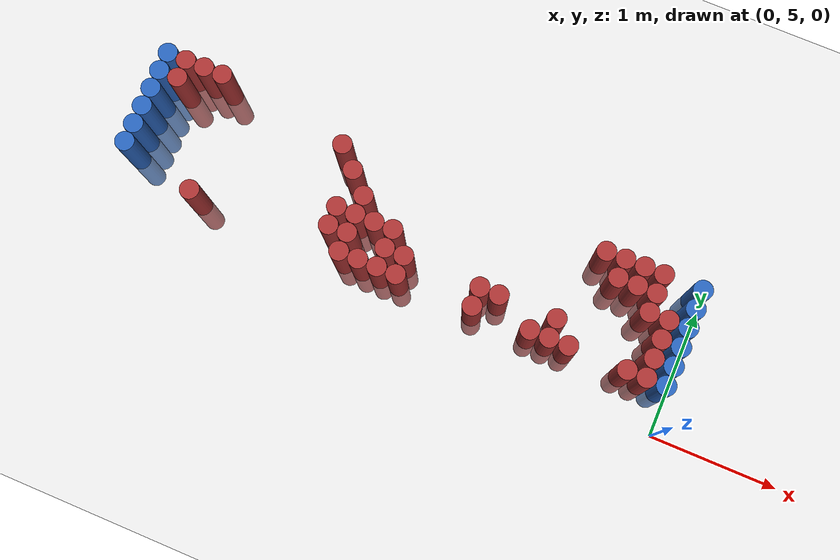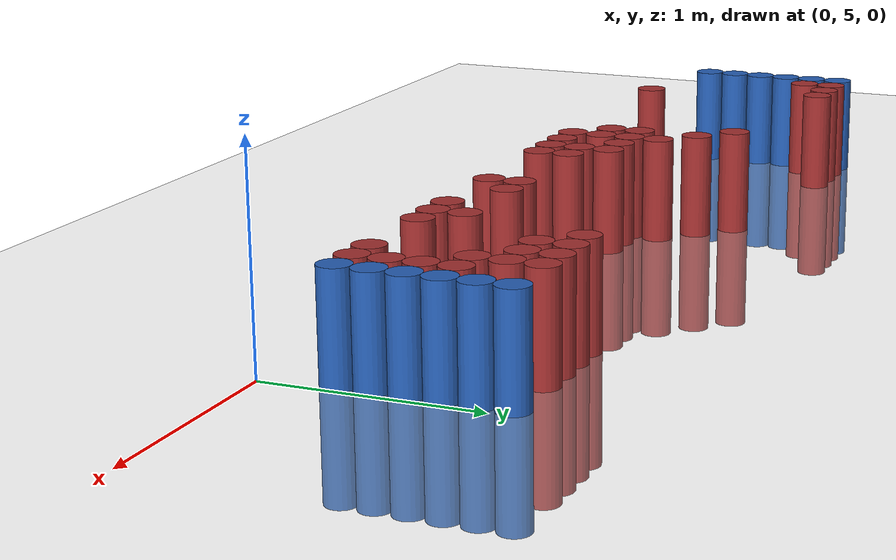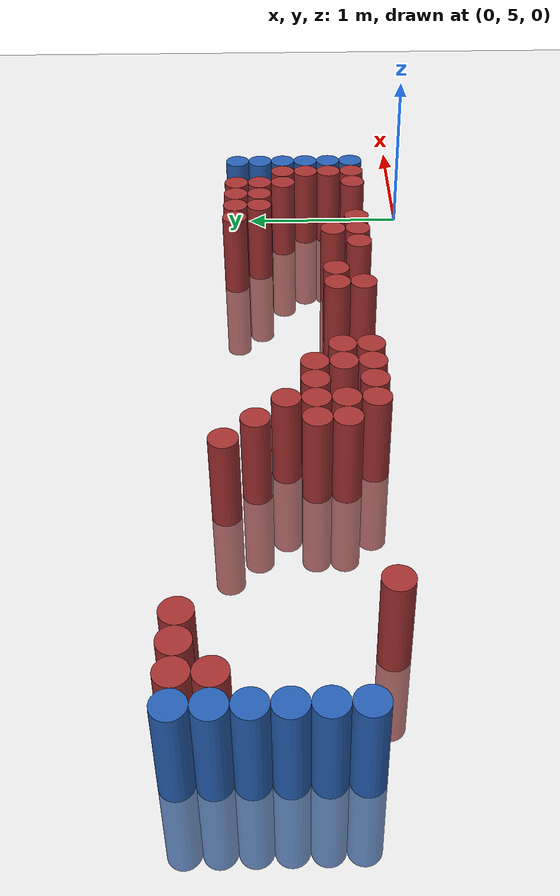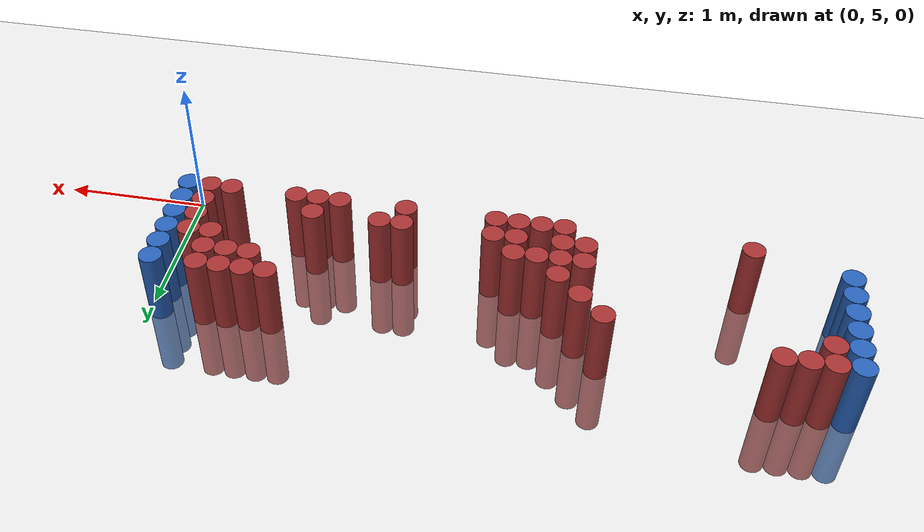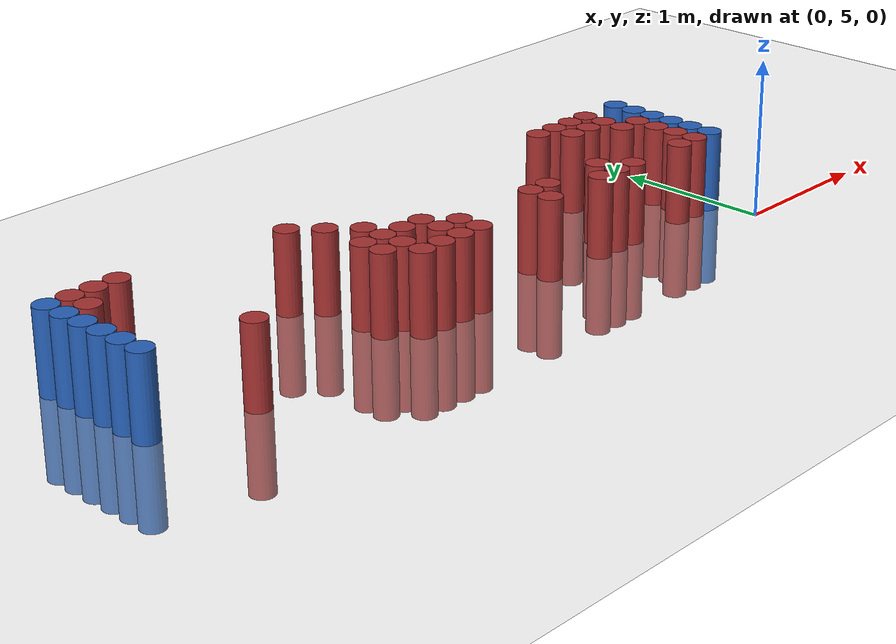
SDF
<sdf version="1.6">
 <world name="default">
  <model name="ground_plane">
   <static>1</static>
   <link name="link">
    <collision name="collision">
     <geometry><plane><normal>0 0 1</normal><size>100 100</size></plane></geometry>
     <surface><friction><ode><mu>100</mu><mu2>50</mu2></ode></friction></surface>
    </collision>
    <visual name="visual">
     <cast_shadows>0</cast_shadows>
     <geometry><plane><normal>0 0 1</normal><size>100 100</size></plane></geometry>
     <material>
      <script><uri>file://media/materials/scripts/gazebo.material</uri><name>Gazebo/Grey</name></script>
     </material>
    </visual>
   </link>
  </model>
  <model name="unit_cylinder_98">
   <static>1</static>
   <pose>-4.425000 5.475000 0.000000 0.000000 0.000000 0.000000</pose>
   <link name="link">
    <inertial>
     <mass>1</mass>
     <inertia><ixx>0.145833</ixx><ixy>0</ixy><ixz>0</ixz><iyy>0.145833</iyy><iyz>0</iyz><izz>0.125</izz></inertia>
    </inertial>
    <collision name="collision">
     <geometry><cylinder><radius>0.075000</radius><length>1</length></cylinder></geometry>
    </collision>
    <visual name="visual">
     <geometry><cylinder><radius>0.075000</radius><length>1</length></cylinder></geometry>
     <material>
      <ambient>0.152000 0.379000 0.720000 1</ambient>
      <diffuse>0.152000 0.379000 0.720000 1</diffuse>
     </material>
     <material>
      <script><name>Gazebo/Grey</name><uri>file://media/materials/scripts/gazebo.material</uri></script>
     </material>
    </visual>
   </link>
  </model>
  <model name="unit_cylinder_99">
   <static>1</static>
   <pose>-4.425000 5.625000 0.000000 0.000000 0.000000 0.000000</pose>
   <link name="link">
    <inertial>
     <mass>1</mass>
     <inertia><ixx>0.145833</ixx><ixy>0</ixy><ixz>0</ixz><iyy>0.145833</iyy><iyz>0</iyz><izz>0.125</izz></inertia>
    </inertial>
    <collision name="collision">
     <geometry><cylinder><radius>0.075000</radius><length>1</length></cylinder></geometry>
    </collision>
    <visual name="visual">
     <geometry><cylinder><radius>0.075000</radius><length>1</length></cylinder></geometry>
     <material>
      <ambient>0.152000 0.379000 0.720000 1</ambient>
      <diffuse>0.152000 0.379000 0.720000 1</diffuse>
     </material>
     <material>
      <script><name>Gazebo/Grey</name><uri>file://media/materials/scripts/gazebo.material</uri></script>
     </material>
    </visual>
   </link>
  </model>
  <model name="unit_cylinder_100">
   <static>1</static>
   <pose>-4.425000 5.775000 0.000000 0.000000 0.000000 0.000000</pose>
   <link name="link">
    <inertial>
     <mass>1</mass>
     <inertia><ixx>0.145833</ixx><ixy>0</ixy><ixz>0</ixz><iyy>0.145833</iyy><iyz>0</iyz><izz>0.125</izz></inertia>
    </inertial>
    <collision name="collision">
     <geometry><cylinder><radius>0.075000</radius><length>1</length></cylinder></geometry>
    </collision>
    <visual name="visual">
     <geometry><cylinder><radius>0.075000</radius><length>1</length></cylinder></geometry>
     <material>
      <ambient>0.152000 0.379000 0.720000 1</ambient>
      <diffuse>0.152000 0.379000 0.720000 1</diffuse>
     </material>
     <material>
      <script><name>Gazebo/Grey</name><uri>file://media/materials/scripts/gazebo.material</uri></script>
     </material>
    </visual>
   </link>
  </model>
  <model name="unit_cylinder_101">
   <static>1</static>
   <pose>-4.425000 5.925000 0.000000 0.000000 0.000000 0.000000</pose>
   <link name="link">
    <inertial>
     <mass>1</mass>
     <inertia><ixx>0.145833</ixx><ixy>0</ixy><ixz>0</ixz><iyy>0.145833</iyy><iyz>0</iyz><izz>0.125</izz></inertia>
    </inertial>
    <collision name="collision">
     <geometry><cylinder><radius>0.075000</radius><length>1</length></cylinder></geometry>
    </collision>
    <visual name="visual">
     <geometry><cylinder><radius>0.075000</radius><length>1</length></cylinder></geometry>
     <material>
      <ambient>0.152000 0.379000 0.720000 1</ambient>
      <diffuse>0.152000 0.379000 0.720000 1</diffuse>
     </material>
     <material>
      <script><name>Gazebo/Grey</name><uri>file://media/materials/scripts/gazebo.material</uri></script>
     </material>
    </visual>
   </link>
  </model>
  <model name="unit_cylinder_102">
   <static>1</static>
   <pose>-4.425000 6.075000 0.000000 0.000000 0.000000 0.000000</pose>
   <link name="link">
    <inertial>
     <mass>1</mass>
     <inertia><ixx>0.145833</ixx><ixy>0</ixy><ixz>0</ixz><iyy>0.145833</iyy><iyz>0</iyz><izz>0.125</izz></inertia>
    </inertial>
    <collision name="collision">
     <geometry><cylinder><radius>0.075000</radius><length>1</length></cylinder></geometry>
    </collision>
    <visual name="visual">
     <geometry><cylinder><radius>0.075000</radius><length>1</length></cylinder></geometry>
     <material>
      <ambient>0.152000 0.379000 0.720000 1</ambient>
      <diffuse>0.152000 0.379000 0.720000 1</diffuse>
     </material>
     <material>
      <script><name>Gazebo/Grey</name><uri>file://media/materials/scripts/gazebo.material</uri></script>
     </material>
    </visual>
   </link>
  </model>
  <model name="unit_cylinder_103">
   <static>1</static>
   <pose>-4.425000 6.225000 0.000000 0.000000 0.000000 0.000000</pose>
   <link name="link">
    <inertial>
     <mass>1</mass>
     <inertia><ixx>0.145833</ixx><ixy>0</ixy><ixz>0</ixz><iyy>0.145833</iyy><iyz>0</iyz><izz>0.125</izz></inertia>
    </inertial>
    <collision name="collision">
     <geometry><cylinder><radius>0.075000</radius><length>1</length></cylinder></geometry>
    </collision>
    <visual name="visual">
     <geometry><cylinder><radius>0.075000</radius><length>1</length></cylinder></geometry>
     <material>
      <ambient>0.152000 0.379000 0.720000 1</ambient>
      <diffuse>0.152000 0.379000 0.720000 1</diffuse>
     </material>
     <material>
      <script><name>Gazebo/Grey</name><uri>file://media/materials/scripts/gazebo.material</uri></script>
     </material>
    </visual>
   </link>
  </model>
  <model name="unit_cylinder_127">
   <static>1</static>
   <pose>-4.275000 6.075000 0.000000 0.000000 0.000000 0.000000</pose>
   <link name="link">
    <inertial>
     <mass>1</mass>
     <inertia><ixx>0.145833</ixx><ixy>0</ixy><ixz>0</ixz><iyy>0.145833</iyy><iyz>0</iyz><izz>0.125</izz></inertia>
    </inertial>
    <collision name="collision">
     <geometry><cylinder><radius>0.075000</radius><length>1</length></cylinder></geometry>
    </collision>
    <visual name="visual">
     <geometry><cylinder><radius>0.075000</radius><length>1</length></cylinder></geometry>
     <material>
      <ambient>0.648000 0.192000 0.192000 1</ambient>
      <diffuse>0.648000 0.192000 0.192000 1</diffuse>
     </material>
     <material>
      <script><name>Gazebo/Grey</name><uri>file://media/materials/scripts/gazebo.material</uri></script>
     </material>
    </visual>
   </link>
  </model>
  <model name="unit_cylinder_128">
   <static>1</static>
   <pose>-4.275000 6.225000 0.000000 0.000000 0.000000 0.000000</pose>
   <link name="link">
    <inertial>
     <mass>1</mass>
     <inertia><ixx>0.145833</ixx><ixy>0</ixy><ixz>0</ixz><iyy>0.145833</iyy><iyz>0</iyz><izz>0.125</izz></inertia>
    </inertial>
    <collision name="collision">
     <geometry><cylinder><radius>0.075000</radius><length>1</length></cylinder></geometry>
    </collision>
    <visual name="visual">
     <geometry><cylinder><radius>0.075000</radius><length>1</length></cylinder></geometry>
     <material>
      <ambient>0.648000 0.192000 0.192000 1</ambient>
      <diffuse>0.648000 0.192000 0.192000 1</diffuse>
     </material>
     <material>
      <script><name>Gazebo/Grey</name><uri>file://media/materials/scripts/gazebo.material</uri></script>
     </material>
    </visual>
   </link>
  </model>
  <model name="unit_cylinder_139">
   <static>1</static>
   <pose>-4.125000 6.225000 0.000000 0.000000 0.000000 0.000000</pose>
   <link name="link">
    <inertial>
     <mass>1</mass>
     <inertia><ixx>0.145833</ixx><ixy>0</ixy><ixz>0</ixz><iyy>0.145833</iyy><iyz>0</iyz><izz>0.125</izz></inertia>
    </inertial>
    <collision name="collision">
     <geometry><cylinder><radius>0.075000</radius><length>1</length></cylinder></geometry>
    </collision>
    <visual name="visual">
     <geometry><cylinder><radius>0.075000</radius><length>1</length></cylinder></geometry>
     <material>
      <ambient>0.648000 0.192000 0.192000 1</ambient>
      <diffuse>0.648000 0.192000 0.192000 1</diffuse>
     </material>
     <material>
      <script><name>Gazebo/Grey</name><uri>file://media/materials/scripts/gazebo.material</uri></script>
     </material>
    </visual>
   </link>
  </model>
  <model name="unit_cylinder_151">
   <static>1</static>
   <pose>-3.975000 6.225000 0.000000 0.000000 0.000000 0.000000</pose>
   <link name="link">
    <inertial>
     <mass>1</mass>
     <inertia><ixx>0.145833</ixx><ixy>0</ixy><ixz>0</ixz><iyy>0.145833</iyy><iyz>0</iyz><izz>0.125</izz></inertia>
    </inertial>
    <collision name="collision">
     <geometry><cylinder><radius>0.075000</radius><length>1</length></cylinder></geometry>
    </collision>
    <visual name="visual">
     <geometry><cylinder><radius>0.075000</radius><length>1</length></cylinder></geometry>
     <material>
      <ambient>0.648000 0.192000 0.192000 1</ambient>
      <diffuse>0.648000 0.192000 0.192000 1</diffuse>
     </material>
     <material>
      <script><name>Gazebo/Grey</name><uri>file://media/materials/scripts/gazebo.material</uri></script>
     </material>
    </visual>
   </link>
  </model>
  <model name="unit_cylinder_155">
   <static>1</static>
   <pose>-3.825000 5.325000 0.000000 0.000000 0.000000 0.000000</pose>
   <link name="link">
    <inertial>
     <mass>1</mass>
     <inertia><ixx>0.145833</ixx><ixy>0</ixy><ixz>0</ixz><iyy>0.145833</iyy><iyz>0</iyz><izz>0.125</izz></inertia>
    </inertial>
    <collision name="collision">
     <geometry><cylinder><radius>0.075000</radius><length>1</length></cylinder></geometry>
    </collision>
    <visual name="visual">
     <geometry><cylinder><radius>0.075000</radius><length>1</length></cylinder></geometry>
     <material>
      <ambient>0.648000 0.192000 0.192000 1</ambient>
      <diffuse>0.648000 0.192000 0.192000 1</diffuse>
     </material>
     <material>
      <script><name>Gazebo/Grey</name><uri>file://media/materials/scripts/gazebo.material</uri></script>
     </material>
    </visual>
   </link>
  </model>
  <model name="unit_cylinder_164">
   <static>1</static>
   <pose>-2.925000 6.075000 0.000000 0.000000 0.000000 0.000000</pose>
   <link name="link">
    <inertial>
     <mass>1</mass>
     <inertia><ixx>0.145833</ixx><ixy>0</ixy><ixz>0</ixz><iyy>0.145833</iyy><iyz>0</iyz><izz>0.125</izz></inertia>
    </inertial>
    <collision name="collision">
     <geometry><cylinder><radius>0.075000</radius><length>1</length></cylinder></geometry>
    </collision>
    <visual name="visual">
     <geometry><cylinder><radius>0.075000</radius><length>1</length></cylinder></geometry>
     <material>
      <ambient>0.648000 0.192000 0.192000 1</ambient>
      <diffuse>0.648000 0.192000 0.192000 1</diffuse>
     </material>
     <material>
      <script><name>Gazebo/Grey</name><uri>file://media/materials/scripts/gazebo.material</uri></script>
     </material>
    </visual>
   </link>
  </model>
  <model name="unit_cylinder_173">
   <static>1</static>
   <pose>-2.775000 5.475000 0.000000 0.000000 0.000000 0.000000</pose>
   <link name="link">
    <inertial>
     <mass>1</mass>
     <inertia><ixx>0.145833</ixx><ixy>0</ixy><ixz>0</ixz><iyy>0.145833</iyy><iyz>0</iyz><izz>0.125</izz></inertia>
    </inertial>
    <collision name="collision">
     <geometry><cylinder><radius>0.075000</radius><length>1</length></cylinder></geometry>
    </collision>
    <visual name="visual">
     <geometry><cylinder><radius>0.075000</radius><length>1</length></cylinder></geometry>
     <material>
      <ambient>0.648000 0.192000 0.192000 1</ambient>
      <diffuse>0.648000 0.192000 0.192000 1</diffuse>
     </material>
     <material>
      <script><name>Gazebo/Grey</name><uri>file://media/materials/scripts/gazebo.material</uri></script>
     </material>
    </visual>
   </link>
  </model>
  <model name="unit_cylinder_174">
   <static>1</static>
   <pose>-2.775000 5.625000 0.000000 0.000000 0.000000 0.000000</pose>
   <link name="link">
    <inertial>
     <mass>1</mass>
     <inertia><ixx>0.145833</ixx><ixy>0</ixy><ixz>0</ixz><iyy>0.145833</iyy><iyz>0</iyz><izz>0.125</izz></inertia>
    </inertial>
    <collision name="collision">
     <geometry><cylinder><radius>0.075000</radius><length>1</length></cylinder></geometry>
    </collision>
    <visual name="visual">
     <geometry><cylinder><radius>0.075000</radius><length>1</length></cylinder></geometry>
     <material>
      <ambient>0.648000 0.192000 0.192000 1</ambient>
      <diffuse>0.648000 0.192000 0.192000 1</diffuse>
     </material>
     <material>
      <script><name>Gazebo/Grey</name><uri>file://media/materials/scripts/gazebo.material</uri></script>
     </material>
    </visual>
   </link>
  </model>
  <model name="unit_cylinder_175">
   <static>1</static>
   <pose>-2.775000 5.925000 0.000000 0.000000 0.000000 0.000000</pose>
   <link name="link">
    <inertial>
     <mass>1</mass>
     <inertia><ixx>0.145833</ixx><ixy>0</ixy><ixz>0</ixz><iyy>0.145833</iyy><iyz>0</iyz><izz>0.125</izz></inertia>
    </inertial>
    <collision name="collision">
     <geometry><cylinder><radius>0.075000</radius><length>1</length></cylinder></geometry>
    </collision>
    <visual name="visual">
     <geometry><cylinder><radius>0.075000</radius><length>1</length></cylinder></geometry>
     <material>
      <ambient>0.648000 0.192000 0.192000 1</ambient>
      <diffuse>0.648000 0.192000 0.192000 1</diffuse>
     </material>
     <material>
      <script><name>Gazebo/Grey</name><uri>file://media/materials/scripts/gazebo.material</uri></script>
     </material>
    </visual>
   </link>
  </model>
  <model name="unit_cylinder_185">
   <static>1</static>
   <pose>-2.625000 5.325000 0.000000 0.000000 0.000000 0.000000</pose>
   <link name="link">
    <inertial>
     <mass>1</mass>
     <inertia><ixx>0.145833</ixx><ixy>0</ixy><ixz>0</ixz><iyy>0.145833</iyy><iyz>0</iyz><izz>0.125</izz></inertia>
    </inertial>
    <collision name="collision">
     <geometry><cylinder><radius>0.075000</radius><length>1</length></cylinder></geometry>
    </collision>
    <visual name="visual">
     <geometry><cylinder><radius>0.075000</radius><length>1</length></cylinder></geometry>
     <material>
      <ambient>0.648000 0.192000 0.192000 1</ambient>
      <diffuse>0.648000 0.192000 0.192000 1</diffuse>
     </material>
     <material>
      <script><name>Gazebo/Grey</name><uri>file://media/materials/scripts/gazebo.material</uri></script>
     </material>
    </visual>
   </link>
  </model>
  <model name="unit_cylinder_186">
   <static>1</static>
   <pose>-2.625000 5.475000 0.000000 0.000000 0.000000 0.000000</pose>
   <link name="link">
    <inertial>
     <mass>1</mass>
     <inertia><ixx>0.145833</ixx><ixy>0</ixy><ixz>0</ixz><iyy>0.145833</iyy><iyz>0</iyz><izz>0.125</izz></inertia>
    </inertial>
    <collision name="collision">
     <geometry><cylinder><radius>0.075000</radius><length>1</length></cylinder></geometry>
    </collision>
    <visual name="visual">
     <geometry><cylinder><radius>0.075000</radius><length>1</length></cylinder></geometry>
     <material>
      <ambient>0.648000 0.192000 0.192000 1</ambient>
      <diffuse>0.648000 0.192000 0.192000 1</diffuse>
     </material>
     <material>
      <script><name>Gazebo/Grey</name><uri>file://media/materials/scripts/gazebo.material</uri></script>
     </material>
    </visual>
   </link>
  </model>
  <model name="unit_cylinder_187">
   <static>1</static>
   <pose>-2.625000 5.625000 0.000000 0.000000 0.000000 0.000000</pose>
   <link name="link">
    <inertial>
     <mass>1</mass>
     <inertia><ixx>0.145833</ixx><ixy>0</ixy><ixz>0</ixz><iyy>0.145833</iyy><iyz>0</iyz><izz>0.125</izz></inertia>
    </inertial>
    <collision name="collision">
     <geometry><cylinder><radius>0.075000</radius><length>1</length></cylinder></geometry>
    </collision>
    <visual name="visual">
     <geometry><cylinder><radius>0.075000</radius><length>1</length></cylinder></geometry>
     <material>
      <ambient>0.648000 0.192000 0.192000 1</ambient>
      <diffuse>0.648000 0.192000 0.192000 1</diffuse>
     </material>
     <material>
      <script><name>Gazebo/Grey</name><uri>file://media/materials/scripts/gazebo.material</uri></script>
     </material>
    </visual>
   </link>
  </model>
  <model name="unit_cylinder_188">
   <static>1</static>
   <pose>-2.625000 5.775000 0.000000 0.000000 0.000000 0.000000</pose>
   <link name="link">
    <inertial>
     <mass>1</mass>
     <inertia><ixx>0.145833</ixx><ixy>0</ixy><ixz>0</ixz><iyy>0.145833</iyy><iyz>0</iyz><izz>0.125</izz></inertia>
    </inertial>
    <collision name="collision">
     <geometry><cylinder><radius>0.075000</radius><length>1</length></cylinder></geometry>
    </collision>
    <visual name="visual">
     <geometry><cylinder><radius>0.075000</radius><length>1</length></cylinder></geometry>
     <material>
      <ambient>0.648000 0.192000 0.192000 1</ambient>
      <diffuse>0.648000 0.192000 0.192000 1</diffuse>
     </material>
     <material>
      <script><name>Gazebo/Grey</name><uri>file://media/materials/scripts/gazebo.material</uri></script>
     </material>
    </visual>
   </link>
  </model>
  <model name="unit_cylinder_194">
   <static>1</static>
   <pose>-2.475000 5.325000 0.000000 0.000000 0.000000 0.000000</pose>
   <link name="link">
    <inertial>
     <mass>1</mass>
     <inertia><ixx>0.145833</ixx><ixy>0</ixy><ixz>0</ixz><iyy>0.145833</iyy><iyz>0</iyz><izz>0.125</izz></inertia>
    </inertial>
    <collision name="collision">
     <geometry><cylinder><radius>0.075000</radius><length>1</length></cylinder></geometry>
    </collision>
    <visual name="visual">
     <geometry><cylinder><radius>0.075000</radius><length>1</length></cylinder></geometry>
     <material>
      <ambient>0.648000 0.192000 0.192000 1</ambient>
      <diffuse>0.648000 0.192000 0.192000 1</diffuse>
     </material>
     <material>
      <script><name>Gazebo/Grey</name><uri>file://media/materials/scripts/gazebo.material</uri></script>
     </material>
    </visual>
   </link>
  </model>
  <model name="unit_cylinder_195">
   <static>1</static>
   <pose>-2.475000 5.625000 0.000000 0.000000 0.000000 0.000000</pose>
   <link name="link">
    <inertial>
     <mass>1</mass>
     <inertia><ixx>0.145833</ixx><ixy>0</ixy><ixz>0</ixz><iyy>0.145833</iyy><iyz>0</iyz><izz>0.125</izz></inertia>
    </inertial>
    <collision name="collision">
     <geometry><cylinder><radius>0.075000</radius><length>1</length></cylinder></geometry>
    </collision>
    <visual name="visual">
     <geometry><cylinder><radius>0.075000</radius><length>1</length></cylinder></geometry>
     <material>
      <ambient>0.648000 0.192000 0.192000 1</ambient>
      <diffuse>0.648000 0.192000 0.192000 1</diffuse>
     </material>
     <material>
      <script><name>Gazebo/Grey</name><uri>file://media/materials/scripts/gazebo.material</uri></script>
     </material>
    </visual>
   </link>
  </model>
  <model name="unit_cylinder_201">
   <static>1</static>
   <pose>-2.325000 5.325000 0.000000 0.000000 0.000000 0.000000</pose>
   <link name="link">
    <inertial>
     <mass>1</mass>
     <inertia><ixx>0.145833</ixx><ixy>0</ixy><ixz>0</ixz><iyy>0.145833</iyy><iyz>0</iyz><izz>0.125</izz></inertia>
    </inertial>
    <collision name="collision">
     <geometry><cylinder><radius>0.075000</radius><length>1</length></cylinder></geometry>
    </collision>
    <visual name="visual">
     <geometry><cylinder><radius>0.075000</radius><length>1</length></cylinder></geometry>
     <material>
      <ambient>0.648000 0.192000 0.192000 1</ambient>
      <diffuse>0.648000 0.192000 0.192000 1</diffuse>
     </material>
     <material>
      <script><name>Gazebo/Grey</name><uri>file://media/materials/scripts/gazebo.material</uri></script>
     </material>
    </visual>
   </link>
  </model>
  <model name="unit_cylinder_202">
   <static>1</static>
   <pose>-2.325000 5.475000 0.000000 0.000000 0.000000 0.000000</pose>
   <link name="link">
    <inertial>
     <mass>1</mass>
     <inertia><ixx>0.145833</ixx><ixy>0</ixy><ixz>0</ixz><iyy>0.145833</iyy><iyz>0</iyz><izz>0.125</izz></inertia>
    </inertial>
    <collision name="collision">
     <geometry><cylinder><radius>0.075000</radius><length>1</length></cylinder></geometry>
    </collision>
    <visual name="visual">
     <geometry><cylinder><radius>0.075000</radius><length>1</length></cylinder></geometry>
     <material>
      <ambient>0.648000 0.192000 0.192000 1</ambient>
      <diffuse>0.648000 0.192000 0.192000 1</diffuse>
     </material>
     <material>
      <script><name>Gazebo/Grey</name><uri>file://media/materials/scripts/gazebo.material</uri></script>
     </material>
    </visual>
   </link>
  </model>
  <model name="unit_cylinder_203">
   <static>1</static>
   <pose>-2.325000 5.625000 0.000000 0.000000 0.000000 0.000000</pose>
   <link name="link">
    <inertial>
     <mass>1</mass>
     <inertia><ixx>0.145833</ixx><ixy>0</ixy><ixz>0</ixz><iyy>0.145833</iyy><iyz>0</iyz><izz>0.125</izz></inertia>
    </inertial>
    <collision name="collision">
     <geometry><cylinder><radius>0.075000</radius><length>1</length></cylinder></geometry>
    </collision>
    <visual name="visual">
     <geometry><cylinder><radius>0.075000</radius><length>1</length></cylinder></geometry>
     <material>
      <ambient>0.648000 0.192000 0.192000 1</ambient>
      <diffuse>0.648000 0.192000 0.192000 1</diffuse>
     </material>
     <material>
      <script><name>Gazebo/Grey</name><uri>file://media/materials/scripts/gazebo.material</uri></script>
     </material>
    </visual>
   </link>
  </model>
  <model name="unit_cylinder_204">
   <static>1</static>
   <pose>-2.175000 5.325000 0.000000 0.000000 0.000000 0.000000</pose>
   <link name="link">
    <inertial>
     <mass>1</mass>
     <inertia><ixx>0.145833</ixx><ixy>0</ixy><ixz>0</ixz><iyy>0.145833</iyy><iyz>0</iyz><izz>0.125</izz></inertia>
    </inertial>
    <collision name="collision">
     <geometry><cylinder><radius>0.075000</radius><length>1</length></cylinder></geometry>
    </collision>
    <visual name="visual">
     <geometry><cylinder><radius>0.075000</radius><length>1</length></cylinder></geometry>
     <material>
      <ambient>0.648000 0.192000 0.192000 1</ambient>
      <diffuse>0.648000 0.192000 0.192000 1</diffuse>
     </material>
     <material>
      <script><name>Gazebo/Grey</name><uri>file://media/materials/scripts/gazebo.material</uri></script>
     </material>
    </visual>
   </link>
  </model>
  <model name="unit_cylinder_205">
   <static>1</static>
   <pose>-2.175000 5.475000 0.000000 0.000000 0.000000 0.000000</pose>
   <link name="link">
    <inertial>
     <mass>1</mass>
     <inertia><ixx>0.145833</ixx><ixy>0</ixy><ixz>0</ixz><iyy>0.145833</iyy><iyz>0</iyz><izz>0.125</izz></inertia>
    </inertial>
    <collision name="collision">
     <geometry><cylinder><radius>0.075000</radius><length>1</length></cylinder></geometry>
    </collision>
    <visual name="visual">
     <geometry><cylinder><radius>0.075000</radius><length>1</length></cylinder></geometry>
     <material>
      <ambient>0.648000 0.192000 0.192000 1</ambient>
      <diffuse>0.648000 0.192000 0.192000 1</diffuse>
     </material>
     <material>
      <script><name>Gazebo/Grey</name><uri>file://media/materials/scripts/gazebo.material</uri></script>
     </material>
    </visual>
   </link>
  </model>
  <model name="unit_cylinder_209">
   <static>1</static>
   <pose>-1.575000 5.325000 0.000000 0.000000 0.000000 0.000000</pose>
   <link name="link">
    <inertial>
     <mass>1</mass>
     <inertia><ixx>0.145833</ixx><ixy>0</ixy><ixz>0</ixz><iyy>0.145833</iyy><iyz>0</iyz><izz>0.125</izz></inertia>
    </inertial>
    <collision name="collision">
     <geometry><cylinder><radius>0.075000</radius><length>1</length></cylinder></geometry>
    </collision>
    <visual name="visual">
     <geometry><cylinder><radius>0.075000</radius><length>1</length></cylinder></geometry>
     <material>
      <ambient>0.648000 0.192000 0.192000 1</ambient>
      <diffuse>0.648000 0.192000 0.192000 1</diffuse>
     </material>
     <material>
      <script><name>Gazebo/Grey</name><uri>file://media/materials/scripts/gazebo.material</uri></script>
     </material>
    </visual>
   </link>
  </model>
  <model name="unit_cylinder_210">
   <static>1</static>
   <pose>-1.575000 5.475000 0.000000 0.000000 0.000000 0.000000</pose>
   <link name="link">
    <inertial>
     <mass>1</mass>
     <inertia><ixx>0.145833</ixx><ixy>0</ixy><ixz>0</ixz><iyy>0.145833</iyy><iyz>0</iyz><izz>0.125</izz></inertia>
    </inertial>
    <collision name="collision">
     <geometry><cylinder><radius>0.075000</radius><length>1</length></cylinder></geometry>
    </collision>
    <visual name="visual">
     <geometry><cylinder><radius>0.075000</radius><length>1</length></cylinder></geometry>
     <material>
      <ambient>0.648000 0.192000 0.192000 1</ambient>
      <diffuse>0.648000 0.192000 0.192000 1</diffuse>
     </material>
     <material>
      <script><name>Gazebo/Grey</name><uri>file://media/materials/scripts/gazebo.material</uri></script>
     </material>
    </visual>
   </link>
  </model>
  <model name="unit_cylinder_214">
   <static>1</static>
   <pose>-1.425000 5.475000 0.000000 0.000000 0.000000 0.000000</pose>
   <link name="link">
    <inertial>
     <mass>1</mass>
     <inertia><ixx>0.145833</ixx><ixy>0</ixy><ixz>0</ixz><iyy>0.145833</iyy><iyz>0</iyz><izz>0.125</izz></inertia>
    </inertial>
    <collision name="collision">
     <geometry><cylinder><radius>0.075000</radius><length>1</length></cylinder></geometry>
    </collision>
    <visual name="visual">
     <geometry><cylinder><radius>0.075000</radius><length>1</length></cylinder></geometry>
     <material>
      <ambient>0.648000 0.192000 0.192000 1</ambient>
      <diffuse>0.648000 0.192000 0.192000 1</diffuse>
     </material>
     <material>
      <script><name>Gazebo/Grey</name><uri>file://media/materials/scripts/gazebo.material</uri></script>
     </material>
    </visual>
   </link>
  </model>
  <model name="unit_cylinder_223">
   <static>1</static>
   <pose>-1.125000 5.325000 0.000000 0.000000 0.000000 0.000000</pose>
   <link name="link">
    <inertial>
     <mass>1</mass>
     <inertia><ixx>0.145833</ixx><ixy>0</ixy><ixz>0</ixz><iyy>0.145833</iyy><iyz>0</iyz><izz>0.125</izz></inertia>
    </inertial>
    <collision name="collision">
     <geometry><cylinder><radius>0.075000</radius><length>1</length></cylinder></geometry>
    </collision>
    <visual name="visual">
     <geometry><cylinder><radius>0.075000</radius><length>1</length></cylinder></geometry>
     <material>
      <ambient>0.648000 0.192000 0.192000 1</ambient>
      <diffuse>0.648000 0.192000 0.192000 1</diffuse>
     </material>
     <material>
      <script><name>Gazebo/Grey</name><uri>file://media/materials/scripts/gazebo.material</uri></script>
     </material>
    </visual>
   </link>
  </model>
  <model name="unit_cylinder_228">
   <static>1</static>
   <pose>-0.975000 5.325000 0.000000 0.000000 0.000000 0.000000</pose>
   <link name="link">
    <inertial>
     <mass>1</mass>
     <inertia><ixx>0.145833</ixx><ixy>0</ixy><ixz>0</ixz><iyy>0.145833</iyy><iyz>0</iyz><izz>0.125</izz></inertia>
    </inertial>
    <collision name="collision">
     <geometry><cylinder><radius>0.075000</radius><length>1</length></cylinder></geometry>
    </collision>
    <visual name="visual">
     <geometry><cylinder><radius>0.075000</radius><length>1</length></cylinder></geometry>
     <material>
      <ambient>0.648000 0.192000 0.192000 1</ambient>
      <diffuse>0.648000 0.192000 0.192000 1</diffuse>
     </material>
     <material>
      <script><name>Gazebo/Grey</name><uri>file://media/materials/scripts/gazebo.material</uri></script>
     </material>
    </visual>
   </link>
  </model>
  <model name="unit_cylinder_229">
   <static>1</static>
   <pose>-0.975000 5.475000 0.000000 0.000000 0.000000 0.000000</pose>
   <link name="link">
    <inertial>
     <mass>1</mass>
     <inertia><ixx>0.145833</ixx><ixy>0</ixy><ixz>0</ixz><iyy>0.145833</iyy><iyz>0</iyz><izz>0.125</izz></inertia>
    </inertial>
    <collision name="collision">
     <geometry><cylinder><radius>0.075000</radius><length>1</length></cylinder></geometry>
    </collision>
    <visual name="visual">
     <geometry><cylinder><radius>0.075000</radius><length>1</length></cylinder></geometry>
     <material>
      <ambient>0.648000 0.192000 0.192000 1</ambient>
      <diffuse>0.648000 0.192000 0.192000 1</diffuse>
     </material>
     <material>
      <script><name>Gazebo/Grey</name><uri>file://media/materials/scripts/gazebo.material</uri></script>
     </material>
    </visual>
   </link>
  </model>
  <model name="unit_cylinder_234">
   <static>1</static>
   <pose>-0.825000 5.325000 0.000000 0.000000 0.000000 0.000000</pose>
   <link name="link">
    <inertial>
     <mass>1</mass>
     <inertia><ixx>0.145833</ixx><ixy>0</ixy><ixz>0</ixz><iyy>0.145833</iyy><iyz>0</iyz><izz>0.125</izz></inertia>
    </inertial>
    <collision name="collision">
     <geometry><cylinder><radius>0.075000</radius><length>1</length></cylinder></geometry>
    </collision>
    <visual name="visual">
     <geometry><cylinder><radius>0.075000</radius><length>1</length></cylinder></geometry>
     <material>
      <ambient>0.648000 0.192000 0.192000 1</ambient>
      <diffuse>0.648000 0.192000 0.192000 1</diffuse>
     </material>
     <material>
      <script><name>Gazebo/Grey</name><uri>file://media/materials/scripts/gazebo.material</uri></script>
     </material>
    </visual>
   </link>
  </model>
  <model name="unit_cylinder_235">
   <static>1</static>
   <pose>-0.825000 6.075000 0.000000 0.000000 0.000000 0.000000</pose>
   <link name="link">
    <inertial>
     <mass>1</mass>
     <inertia><ixx>0.145833</ixx><ixy>0</ixy><ixz>0</ixz><iyy>0.145833</iyy><iyz>0</iyz><izz>0.125</izz></inertia>
    </inertial>
    <collision name="collision">
     <geometry><cylinder><radius>0.075000</radius><length>1</length></cylinder></geometry>
    </collision>
    <visual name="visual">
     <geometry><cylinder><radius>0.075000</radius><length>1</length></cylinder></geometry>
     <material>
      <ambient>0.648000 0.192000 0.192000 1</ambient>
      <diffuse>0.648000 0.192000 0.192000 1</diffuse>
     </material>
     <material>
      <script><name>Gazebo/Grey</name><uri>file://media/materials/scripts/gazebo.material</uri></script>
     </material>
    </visual>
   </link>
  </model>
  <model name="unit_cylinder_238">
   <static>1</static>
   <pose>-0.675000 5.925000 0.000000 0.000000 0.000000 0.000000</pose>
   <link name="link">
    <inertial>
     <mass>1</mass>
     <inertia><ixx>0.145833</ixx><ixy>0</ixy><ixz>0</ixz><iyy>0.145833</iyy><iyz>0</iyz><izz>0.125</izz></inertia>
    </inertial>
    <collision name="collision">
     <geometry><cylinder><radius>0.075000</radius><length>1</length></cylinder></geometry>
    </collision>
    <visual name="visual">
     <geometry><cylinder><radius>0.075000</radius><length>1</length></cylinder></geometry>
     <material>
      <ambient>0.648000 0.192000 0.192000 1</ambient>
      <diffuse>0.648000 0.192000 0.192000 1</diffuse>
     </material>
     <material>
      <script><name>Gazebo/Grey</name><uri>file://media/materials/scripts/gazebo.material</uri></script>
     </material>
    </visual>
   </link>
  </model>
  <model name="unit_cylinder_239">
   <static>1</static>
   <pose>-0.675000 6.075000 0.000000 0.000000 0.000000 0.000000</pose>
   <link name="link">
    <inertial>
     <mass>1</mass>
     <inertia><ixx>0.145833</ixx><ixy>0</ixy><ixz>0</ixz><iyy>0.145833</iyy><iyz>0</iyz><izz>0.125</izz></inertia>
    </inertial>
    <collision name="collision">
     <geometry><cylinder><radius>0.075000</radius><length>1</length></cylinder></geometry>
    </collision>
    <visual name="visual">
     <geometry><cylinder><radius>0.075000</radius><length>1</length></cylinder></geometry>
     <material>
      <ambient>0.648000 0.192000 0.192000 1</ambient>
      <diffuse>0.648000 0.192000 0.192000 1</diffuse>
     </material>
     <material>
      <script><name>Gazebo/Grey</name><uri>file://media/materials/scripts/gazebo.material</uri></script>
     </material>
    </visual>
   </link>
  </model>
  <model name="unit_cylinder_241">
   <static>1</static>
   <pose>-0.525000 5.925000 0.000000 0.000000 0.000000 0.000000</pose>
   <link name="link">
    <inertial>
     <mass>1</mass>
     <inertia><ixx>0.145833</ixx><ixy>0</ixy><ixz>0</ixz><iyy>0.145833</iyy><iyz>0</iyz><izz>0.125</izz></inertia>
    </inertial>
    <collision name="collision">
     <geometry><cylinder><radius>0.075000</radius><length>1</length></cylinder></geometry>
    </collision>
    <visual name="visual">
     <geometry><cylinder><radius>0.075000</radius><length>1</length></cylinder></geometry>
     <material>
      <ambient>0.648000 0.192000 0.192000 1</ambient>
      <diffuse>0.648000 0.192000 0.192000 1</diffuse>
     </material>
     <material>
      <script><name>Gazebo/Grey</name><uri>file://media/materials/scripts/gazebo.material</uri></script>
     </material>
    </visual>
   </link>
  </model>
  <model name="unit_cylinder_242">
   <static>1</static>
   <pose>-0.525000 6.075000 0.000000 0.000000 0.000000 0.000000</pose>
   <link name="link">
    <inertial>
     <mass>1</mass>
     <inertia><ixx>0.145833</ixx><ixy>0</ixy><ixz>0</ixz><iyy>0.145833</iyy><iyz>0</iyz><izz>0.125</izz></inertia>
    </inertial>
    <collision name="collision">
     <geometry><cylinder><radius>0.075000</radius><length>1</length></cylinder></geometry>
    </collision>
    <visual name="visual">
     <geometry><cylinder><radius>0.075000</radius><length>1</length></cylinder></geometry>
     <material>
      <ambient>0.648000 0.192000 0.192000 1</ambient>
      <diffuse>0.648000 0.192000 0.192000 1</diffuse>
     </material>
     <material>
      <script><name>Gazebo/Grey</name><uri>file://media/materials/scripts/gazebo.material</uri></script>
     </material>
    </visual>
   </link>
  </model>
  <model name="unit_cylinder_248">
   <static>1</static>
   <pose>-0.375000 5.325000 0.000000 0.000000 0.000000 0.000000</pose>
   <link name="link">
    <inertial>
     <mass>1</mass>
     <inertia><ixx>0.145833</ixx><ixy>0</ixy><ixz>0</ixz><iyy>0.145833</iyy><iyz>0</iyz><izz>0.125</izz></inertia>
    </inertial>
    <collision name="collision">
     <geometry><cylinder><radius>0.075000</radius><length>1</length></cylinder></geometry>
    </collision>
    <visual name="visual">
     <geometry><cylinder><radius>0.075000</radius><length>1</length></cylinder></geometry>
     <material>
      <ambient>0.648000 0.192000 0.192000 1</ambient>
      <diffuse>0.648000 0.192000 0.192000 1</diffuse>
     </material>
     <material>
      <script><name>Gazebo/Grey</name><uri>file://media/materials/scripts/gazebo.material</uri></script>
     </material>
    </visual>
   </link>
  </model>
  <model name="unit_cylinder_249">
   <static>1</static>
   <pose>-0.375000 5.775000 0.000000 0.000000 0.000000 0.000000</pose>
   <link name="link">
    <inertial>
     <mass>1</mass>
     <inertia><ixx>0.145833</ixx><ixy>0</ixy><ixz>0</ixz><iyy>0.145833</iyy><iyz>0</iyz><izz>0.125</izz></inertia>
    </inertial>
    <collision name="collision">
     <geometry><cylinder><radius>0.075000</radius><length>1</length></cylinder></geometry>
    </collision>
    <visual name="visual">
     <geometry><cylinder><radius>0.075000</radius><length>1</length></cylinder></geometry>
     <material>
      <ambient>0.648000 0.192000 0.192000 1</ambient>
      <diffuse>0.648000 0.192000 0.192000 1</diffuse>
     </material>
     <material>
      <script><name>Gazebo/Grey</name><uri>file://media/materials/scripts/gazebo.material</uri></script>
     </material>
    </visual>
   </link>
  </model>
  <model name="unit_cylinder_250">
   <static>1</static>
   <pose>-0.375000 5.925000 0.000000 0.000000 0.000000 0.000000</pose>
   <link name="link">
    <inertial>
     <mass>1</mass>
     <inertia><ixx>0.145833</ixx><ixy>0</ixy><ixz>0</ixz><iyy>0.145833</iyy><iyz>0</iyz><izz>0.125</izz></inertia>
    </inertial>
    <collision name="collision">
     <geometry><cylinder><radius>0.075000</radius><length>1</length></cylinder></geometry>
    </collision>
    <visual name="visual">
     <geometry><cylinder><radius>0.075000</radius><length>1</length></cylinder></geometry>
     <material>
      <ambient>0.648000 0.192000 0.192000 1</ambient>
      <diffuse>0.648000 0.192000 0.192000 1</diffuse>
     </material>
     <material>
      <script><name>Gazebo/Grey</name><uri>file://media/materials/scripts/gazebo.material</uri></script>
     </material>
    </visual>
   </link>
  </model>
  <model name="unit_cylinder_251">
   <static>1</static>
   <pose>-0.375000 6.075000 0.000000 0.000000 0.000000 0.000000</pose>
   <link name="link">
    <inertial>
     <mass>1</mass>
     <inertia><ixx>0.145833</ixx><ixy>0</ixy><ixz>0</ixz><iyy>0.145833</iyy><iyz>0</iyz><izz>0.125</izz></inertia>
    </inertial>
    <collision name="collision">
     <geometry><cylinder><radius>0.075000</radius><length>1</length></cylinder></geometry>
    </collision>
    <visual name="visual">
     <geometry><cylinder><radius>0.075000</radius><length>1</length></cylinder></geometry>
     <material>
      <ambient>0.648000 0.192000 0.192000 1</ambient>
      <diffuse>0.648000 0.192000 0.192000 1</diffuse>
     </material>
     <material>
      <script><name>Gazebo/Grey</name><uri>file://media/materials/scripts/gazebo.material</uri></script>
     </material>
    </visual>
   </link>
  </model>
  <model name="unit_cylinder_263">
   <static>1</static>
   <pose>-0.225000 5.325000 0.000000 0.000000 0.000000 0.000000</pose>
   <link name="link">
    <inertial>
     <mass>1</mass>
     <inertia><ixx>0.145833</ixx><ixy>0</ixy><ixz>0</ixz><iyy>0.145833</iyy><iyz>0</iyz><izz>0.125</izz></inertia>
    </inertial>
    <collision name="collision">
     <geometry><cylinder><radius>0.075000</radius><length>1</length></cylinder></geometry>
    </collision>
    <visual name="visual">
     <geometry><cylinder><radius>0.075000</radius><length>1</length></cylinder></geometry>
     <material>
      <ambient>0.648000 0.192000 0.192000 1</ambient>
      <diffuse>0.648000 0.192000 0.192000 1</diffuse>
     </material>
     <material>
      <script><name>Gazebo/Grey</name><uri>file://media/materials/scripts/gazebo.material</uri></script>
     </material>
    </visual>
   </link>
  </model>
  <model name="unit_cylinder_264">
   <static>1</static>
   <pose>-0.225000 5.475000 0.000000 0.000000 0.000000 0.000000</pose>
   <link name="link">
    <inertial>
     <mass>1</mass>
     <inertia><ixx>0.145833</ixx><ixy>0</ixy><ixz>0</ixz><iyy>0.145833</iyy><iyz>0</iyz><izz>0.125</izz></inertia>
    </inertial>
    <collision name="collision">
     <geometry><cylinder><radius>0.075000</radius><length>1</length></cylinder></geometry>
    </collision>
    <visual name="visual">
     <geometry><cylinder><radius>0.075000</radius><length>1</length></cylinder></geometry>
     <material>
      <ambient>0.648000 0.192000 0.192000 1</ambient>
      <diffuse>0.648000 0.192000 0.192000 1</diffuse>
     </material>
     <material>
      <script><name>Gazebo/Grey</name><uri>file://media/materials/scripts/gazebo.material</uri></script>
     </material>
    </visual>
   </link>
  </model>
  <model name="unit_cylinder_265">
   <static>1</static>
   <pose>-0.225000 5.625000 0.000000 0.000000 0.000000 0.000000</pose>
   <link name="link">
    <inertial>
     <mass>1</mass>
     <inertia><ixx>0.145833</ixx><ixy>0</ixy><ixz>0</ixz><iyy>0.145833</iyy><iyz>0</iyz><izz>0.125</izz></inertia>
    </inertial>
    <collision name="collision">
     <geometry><cylinder><radius>0.075000</radius><length>1</length></cylinder></geometry>
    </collision>
    <visual name="visual">
     <geometry><cylinder><radius>0.075000</radius><length>1</length></cylinder></geometry>
     <material>
      <ambient>0.648000 0.192000 0.192000 1</ambient>
      <diffuse>0.648000 0.192000 0.192000 1</diffuse>
     </material>
     <material>
      <script><name>Gazebo/Grey</name><uri>file://media/materials/scripts/gazebo.material</uri></script>
     </material>
    </visual>
   </link>
  </model>
  <model name="unit_cylinder_266">
   <static>1</static>
   <pose>-0.225000 5.775000 0.000000 0.000000 0.000000 0.000000</pose>
   <link name="link">
    <inertial>
     <mass>1</mass>
     <inertia><ixx>0.145833</ixx><ixy>0</ixy><ixz>0</ixz><iyy>0.145833</iyy><iyz>0</iyz><izz>0.125</izz></inertia>
    </inertial>
    <collision name="collision">
     <geometry><cylinder><radius>0.075000</radius><length>1</length></cylinder></geometry>
    </collision>
    <visual name="visual">
     <geometry><cylinder><radius>0.075000</radius><length>1</length></cylinder></geometry>
     <material>
      <ambient>0.648000 0.192000 0.192000 1</ambient>
      <diffuse>0.648000 0.192000 0.192000 1</diffuse>
     </material>
     <material>
      <script><name>Gazebo/Grey</name><uri>file://media/materials/scripts/gazebo.material</uri></script>
     </material>
    </visual>
   </link>
  </model>
  <model name="unit_cylinder_284">
   <static>1</static>
   <pose>-0.075000 5.325000 0.000000 0.000000 0.000000 0.000000</pose>
   <link name="link">
    <inertial>
     <mass>1</mass>
     <inertia><ixx>0.145833</ixx><ixy>0</ixy><ixz>0</ixz><iyy>0.145833</iyy><iyz>0</iyz><izz>0.125</izz></inertia>
    </inertial>
    <collision name="collision">
     <geometry><cylinder><radius>0.075000</radius><length>1</length></cylinder></geometry>
    </collision>
    <visual name="visual">
     <geometry><cylinder><radius>0.075000</radius><length>1</length></cylinder></geometry>
     <material>
      <ambient>0.152000 0.379000 0.720000 1</ambient>
      <diffuse>0.152000 0.379000 0.720000 1</diffuse>
     </material>
     <material>
      <script><name>Gazebo/Grey</name><uri>file://media/materials/scripts/gazebo.material</uri></script>
     </material>
    </visual>
   </link>
  </model>
  <model name="unit_cylinder_285">
   <static>1</static>
   <pose>-0.075000 5.475000 0.000000 0.000000 0.000000 0.000000</pose>
   <link name="link">
    <inertial>
     <mass>1</mass>
     <inertia><ixx>0.145833</ixx><ixy>0</ixy><ixz>0</ixz><iyy>0.145833</iyy><iyz>0</iyz><izz>0.125</izz></inertia>
    </inertial>
    <collision name="collision">
     <geometry><cylinder><radius>0.075000</radius><length>1</length></cylinder></geometry>
    </collision>
    <visual name="visual">
     <geometry><cylinder><radius>0.075000</radius><length>1</length></cylinder></geometry>
     <material>
      <ambient>0.152000 0.379000 0.720000 1</ambient>
      <diffuse>0.152000 0.379000 0.720000 1</diffuse>
     </material>
     <material>
      <script><name>Gazebo/Grey</name><uri>file://media/materials/scripts/gazebo.material</uri></script>
     </material>
    </visual>
   </link>
  </model>
  <model name="unit_cylinder_286">
   <static>1</static>
   <pose>-0.075000 5.625000 0.000000 0.000000 0.000000 0.000000</pose>
   <link name="link">
    <inertial>
     <mass>1</mass>
     <inertia><ixx>0.145833</ixx><ixy>0</ixy><ixz>0</ixz><iyy>0.145833</iyy><iyz>0</iyz><izz>0.125</izz></inertia>
    </inertial>
    <collision name="collision">
     <geometry><cylinder><radius>0.075000</radius><length>1</length></cylinder></geometry>
    </collision>
    <visual name="visual">
     <geometry><cylinder><radius>0.075000</radius><length>1</length></cylinder></geometry>
     <material>
      <ambient>0.152000 0.379000 0.720000 1</ambient>
      <diffuse>0.152000 0.379000 0.720000 1</diffuse>
     </material>
     <material>
      <script><name>Gazebo/Grey</name><uri>file://media/materials/scripts/gazebo.material</uri></script>
     </material>
    </visual>
   </link>
  </model>
  <model name="unit_cylinder_287">
   <static>1</static>
   <pose>-0.075000 5.775000 0.000000 0.000000 0.000000 0.000000</pose>
   <link name="link">
    <inertial>
     <mass>1</mass>
     <inertia><ixx>0.145833</ixx><ixy>0</ixy><ixz>0</ixz><iyy>0.145833</iyy><iyz>0</iyz><izz>0.125</izz></inertia>
    </inertial>
    <collision name="collision">
     <geometry><cylinder><radius>0.075000</radius><length>1</length></cylinder></geometry>
    </collision>
    <visual name="visual">
     <geometry><cylinder><radius>0.075000</radius><length>1</length></cylinder></geometry>
     <material>
      <ambient>0.152000 0.379000 0.720000 1</ambient>
      <diffuse>0.152000 0.379000 0.720000 1</diffuse>
     </material>
     <material>
      <script><name>Gazebo/Grey</name><uri>file://media/materials/scripts/gazebo.material</uri></script>
     </material>
    </visual>
   </link>
  </model>
  <model name="unit_cylinder_288">
   <static>1</static>
   <pose>-0.075000 5.925000 0.000000 0.000000 0.000000 0.000000</pose>
   <link name="link">
    <inertial>
     <mass>1</mass>
     <inertia><ixx>0.145833</ixx><ixy>0</ixy><ixz>0</ixz><iyy>0.145833</iyy><iyz>0</iyz><izz>0.125</izz></inertia>
    </inertial>
    <collision name="collision">
     <geometry><cylinder><radius>0.075000</radius><length>1</length></cylinder></geometry>
    </collision>
    <visual name="visual">
     <geometry><cylinder><radius>0.075000</radius><length>1</length></cylinder></geometry>
     <material>
      <ambient>0.152000 0.379000 0.720000 1</ambient>
      <diffuse>0.152000 0.379000 0.720000 1</diffuse>
     </material>
     <material>
      <script><name>Gazebo/Grey</name><uri>file://media/materials/scripts/gazebo.material</uri></script>
     </material>
    </visual>
   </link>
  </model>
  <model name="unit_cylinder_289">
   <static>1</static>
   <pose>-0.075000 6.075000 0.000000 0.000000 0.000000 0.000000</pose>
   <link name="link">
    <inertial>
     <mass>1</mass>
     <inertia><ixx>0.145833</ixx><ixy>0</ixy><ixz>0</ixz><iyy>0.145833</iyy><iyz>0</iyz><izz>0.125</izz></inertia>
    </inertial>
    <collision name="collision">
     <geometry><cylinder><radius>0.075000</radius><length>1</length></cylinder></geometry>
    </collision>
    <visual name="visual">
     <geometry><cylinder><radius>0.075000</radius><length>1</length></cylinder></geometry>
     <material>
      <ambient>0.152000 0.379000 0.720000 1</ambient>
      <diffuse>0.152000 0.379000 0.720000 1</diffuse>
     </material>
     <material>
      <script><name>Gazebo/Grey</name><uri>file://media/materials/scripts/gazebo.material</uri></script>
     </material>
    </visual>
   </link>
  </model>
 </world>
</sdf>
